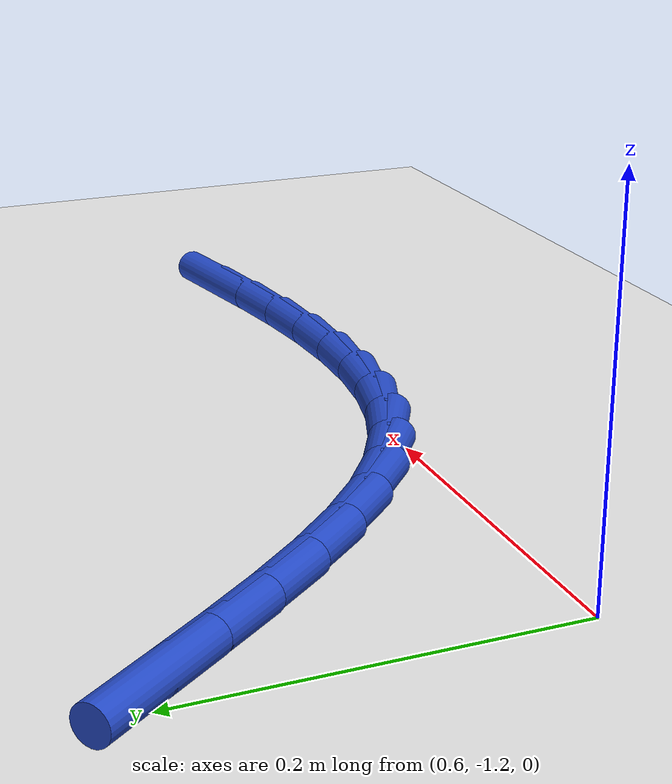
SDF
<sdf version="1.6">
 <world name="default">
  <model name="ground_plane">
   <static>1</static>
   <link name="link">
    <collision name="collision">
     <geometry><plane><normal>0 0 1</normal><size>100 100</size></plane></geometry>
     <surface><friction><ode><mu>100</mu><mu2>50</mu2></ode></friction></surface>
    </collision>
    <visual name="visual">
     <cast_shadows>0</cast_shadows>
     <geometry><plane><normal>0 0 1</normal><size>100 100</size></plane></geometry>
     <material>
      <script><uri>file://media/materials/scripts/gazebo.material</uri><name>Gazebo/WhiteGlow</name></script>
     </material>
    </visual>
   </link>
  </model>
  <model name="line">
   <link name="link_144">
    <pose>1.0897630024395746 -1.1926585052766863 0.01 0 1.57 0.18003005617072654</pose>
    <collision name="collision">
     <geometry><cylinder><radius>0.01</radius><length>0.08</length></cylinder></geometry>
    </collision>
    <visual name="visual">
     <material>
      <script><name>Gazebo/Blue</name><uri>file://media/materials/scripts/gazebo.material</uri></script>
     </material>
     <geometry><cylinder><radius>0.01</radius><length>0.08</length></cylinder></geometry>
    </visual>
   </link>
   <link name="link_145">
    <pose>1.0493347256109222 -1.2000164751332916 0.01 0 1.57 0.14799762508973593</pose>
    <collision name="collision">
     <geometry><cylinder><radius>0.01</radius><length>0.08</length></cylinder></geometry>
    </collision>
    <visual name="visual">
     <material>
      <script><name>Gazebo/Blue</name><uri>file://media/materials/scripts/gazebo.material</uri></script>
     </material>
     <geometry><cylinder><radius>0.01</radius><length>0.08</length></cylinder></geometry>
    </visual>
   </link>
   <link name="link_146">
    <pose>1.0096078585821096 -1.2059392632443233 0.01 0 1.57 0.10371487712090624</pose>
    <collision name="collision">
     <geometry><cylinder><radius>0.01</radius><length>0.08</length></cylinder></geometry>
    </collision>
    <visual name="visual">
     <material>
      <script><name>Gazebo/Blue</name><uri>file://media/materials/scripts/gazebo.material</uri></script>
     </material>
     <geometry><cylinder><radius>0.01</radius><length>0.08</length></cylinder></geometry>
    </visual>
   </link>
   <link name="link_147">
    <pose>0.9707465431178104 -1.2099842739717865 0.01 0 1.57 0.04555565916195364</pose>
    <collision name="collision">
     <geometry><cylinder><radius>0.01</radius><length>0.08</length></cylinder></geometry>
    </collision>
    <visual name="visual">
     <material>
      <script><name>Gazebo/Blue</name><uri>file://media/materials/scripts/gazebo.material</uri></script>
     </material>
     <geometry><cylinder><radius>0.01</radius><length>0.08</length></cylinder></geometry>
    </visual>
   </link>
   <link name="link_148">
    <pose>0.932914920982697 -1.211708911677687 0.01 0 1.57 -0.0283328547472831</pose>
    <collision name="collision">
     <geometry><cylinder><radius>0.01</radius><length>0.08</length></cylinder></geometry>
    </collision>
    <visual name="visual">
     <material>
      <script><name>Gazebo/Blue</name><uri>file://media/materials/scripts/gazebo.material</uri></script>
     </material>
     <geometry><cylinder><radius>0.01</radius><length>0.08</length></cylinder></geometry>
    </visual>
   </link>
   <link name="link_149">
    <pose>0.8962771339414424 -1.2106705807240294 0.01 0 1.57 -0.11971722707792885</pose>
    <collision name="collision">
     <geometry><cylinder><radius>0.01</radius><length>0.08</length></cylinder></geometry>
    </collision>
    <visual name="visual">
     <material>
      <script><name>Gazebo/Blue</name><uri>file://media/materials/scripts/gazebo.material</uri></script>
     </material>
     <geometry><cylinder><radius>0.01</radius><length>0.08</length></cylinder></geometry>
    </visual>
   </link>
   <link name="link_150">
    <pose>0.8609973237587186 -1.2064266854728192 0.01 0 1.57 -0.2296606086682544</pose>
    <collision name="collision">
     <geometry><cylinder><radius>0.01</radius><length>0.08</length></cylinder></geometry>
    </collision>
    <visual name="visual">
     <material>
      <script><name>Gazebo/Blue</name><uri>file://media/materials/scripts/gazebo.material</uri></script>
     </material>
     <geometry><cylinder><radius>0.01</radius><length>0.08</length></cylinder></geometry>
    </visual>
   </link>
   <link name="link_151">
    <pose>0.8272396321991988 -1.198534630286062 0.01 0 1.57 -0.35756799214515905</pose>
    <collision name="collision">
     <geometry><cylinder><radius>0.01</radius><length>0.08</length></cylinder></geometry>
    </collision>
    <visual name="visual">
     <material>
      <script><name>Gazebo/Blue</name><uri>file://media/materials/scripts/gazebo.material</uri></script>
     </material>
     <geometry><cylinder><radius>0.01</radius><length>0.08</length></cylinder></geometry>
    </visual>
   </link>
   <link name="link_152">
    <pose>0.795168201027556 -1.186551819525763 0.01 0 1.57 -0.49839326245995347</pose>
    <collision name="collision">
     <geometry><cylinder><radius>0.01</radius><length>0.08</length></cylinder></geometry>
    </collision>
    <visual name="visual">
     <material>
      <script><name>Gazebo/Blue</name><uri>file://media/materials/scripts/gazebo.material</uri></script>
     </material>
     <geometry><cylinder><radius>0.01</radius><length>0.08</length></cylinder></geometry>
    </visual>
   </link>
   <link name="link_153">
    <pose>0.7649227058172846 -1.1700916749468324 0.01 0 1.57 -0.6274840868840982</pose>
    <collision name="collision">
     <geometry><cylinder><radius>0.01</radius><length>0.08</length></cylinder></geometry>
    </collision>
    <visual name="visual">
     <material>
      <script><name>Gazebo/Blue</name><uri>file://media/materials/scripts/gazebo.material</uri></script>
     </material>
     <geometry><cylinder><radius>0.01</radius><length>0.08</length></cylinder></geometry>
    </visual>
   </link>
   <link name="link_154">
    <pose>0.7363729743686779 -1.1493854573714601 0.01 0 1.57 -0.7308033715641505</pose>
    <collision name="collision">
     <geometry><cylinder><radius>0.01</radius><length>0.08</length></cylinder></geometry>
    </collision>
    <visual name="visual">
     <material>
      <script><name>Gazebo/Blue</name><uri>file://media/materials/scripts/gazebo.material</uri></script>
     </material>
     <geometry><cylinder><radius>0.01</radius><length>0.08</length></cylinder></geometry>
    </visual>
   </link>
   <link name="link_155">
    <pose>0.7092214175197381 -1.1250477427724432 0.01 0 1.57 -0.8096511993309399</pose>
    <collision name="collision">
     <geometry><cylinder><radius>0.01</radius><length>0.08</length></cylinder></geometry>
    </collision>
    <visual name="visual">
     <material>
      <script><name>Gazebo/Blue</name><uri>file://media/materials/scripts/gazebo.material</uri></script>
     </material>
     <geometry><cylinder><radius>0.01</radius><length>0.08</length></cylinder></geometry>
    </visual>
   </link>
   <link name="link_156">
    <pose>0.6831679410876375 -1.0976988425774818 0.01 0 1.57 -0.8667576306835196</pose>
    <collision name="collision">
     <geometry><cylinder><radius>0.01</radius><length>0.08</length></cylinder></geometry>
    </collision>
    <visual name="visual">
     <material>
      <script><name>Gazebo/Blue</name><uri>file://media/materials/scripts/gazebo.material</uri></script>
     </material>
     <geometry><cylinder><radius>0.01</radius><length>0.08</length></cylinder></geometry>
    </visual>
   </link>
   <link name="link_157">
    <pose>0.6579124508895478 -1.0679590682142759 0.01 0 1.57 -0.9048373687537392</pose>
    <collision name="collision">
     <geometry><cylinder><radius>0.01</radius><length>0.08</length></cylinder></geometry>
    </collision>
    <visual name="visual">
     <material>
      <script><name>Gazebo/Blue</name><uri>file://media/materials/scripts/gazebo.material</uri></script>
     </material>
     <geometry><cylinder><radius>0.01</radius><length>0.08</length></cylinder></geometry>
    </visual>
   </link>
   <link name="link_158">
    <pose>0.633154852742641 -1.0364487311105257 0.01 0 1.57 -0.926035265389993</pose>
    <collision name="collision">
     <geometry><cylinder><radius>0.01</radius><length>0.08</length></cylinder></geometry>
    </collision>
    <visual name="visual">
     <material>
      <script><name>Gazebo/Blue</name><uri>file://media/materials/scripts/gazebo.material</uri></script>
     </material>
     <geometry><cylinder><radius>0.01</radius><length>0.08</length></cylinder></geometry>
    </visual>
   </link>
   <link name="link_159">
    <pose>0.60859505246409 -1.003788142693931 0.01 0 1.57 -0.9317605119721563</pose>
    <collision name="collision">
     <geometry><cylinder><radius>0.01</radius><length>0.08</length></cylinder></geometry>
    </collision>
    <visual name="visual">
     <material>
      <script><name>Gazebo/Blue</name><uri>file://media/materials/scripts/gazebo.material</uri></script>
     </material>
     <geometry><cylinder><radius>0.01</radius><length>0.08</length></cylinder></geometry>
    </visual>
   </link>
  </model>
 </world>
</sdf>
